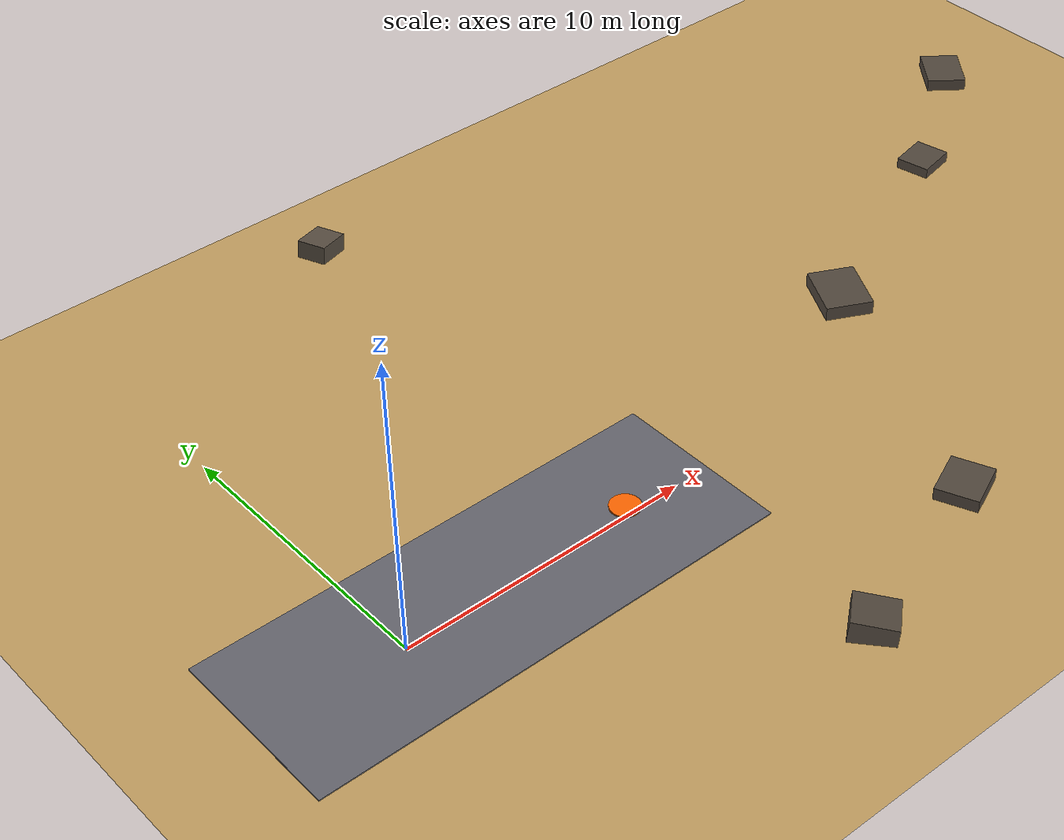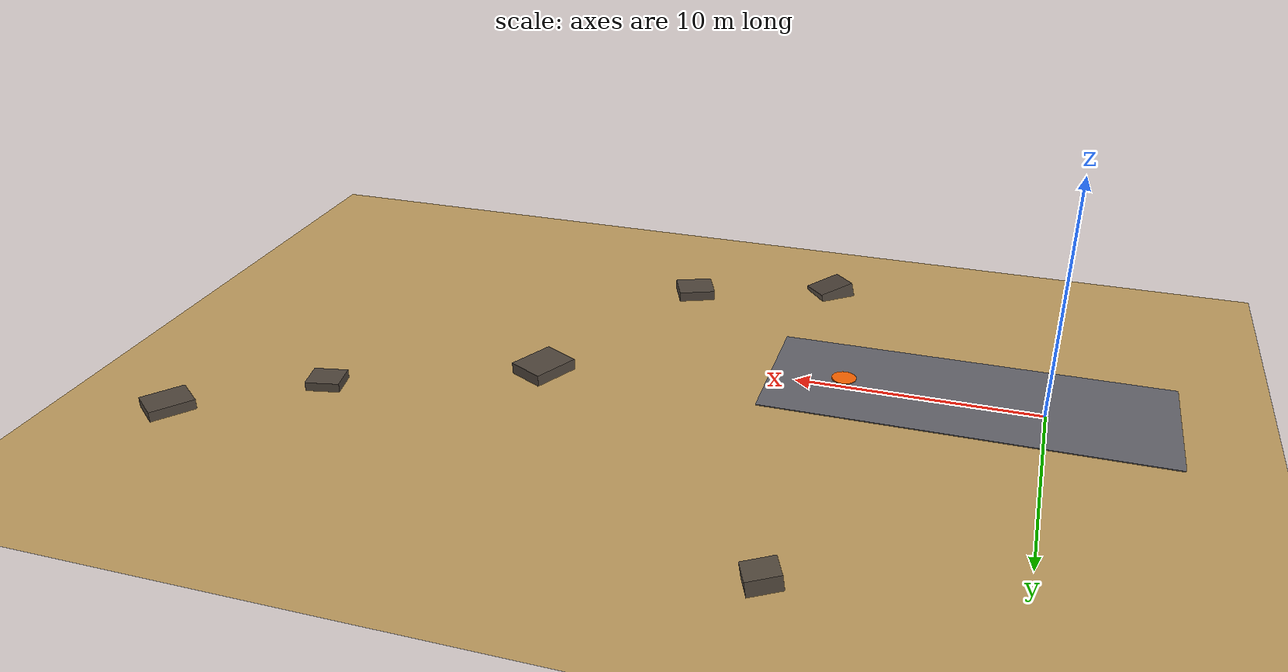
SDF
<sdf version="1.9">
 <world name="lunar_terrain">
  <model name="terrain">
   <static>true</static>
   <link name="terrain_link">
    <visual name="terrain_visual">
     <pose>0 0 0.375 0 0 0</pose>
     <geometry><plane><normal>0 0 1</normal><size>200 200</size></plane></geometry>
     <material>
      <ambient>0.55 0.45 0.30 1</ambient>
      <diffuse>0.76 0.62 0.38 1</diffuse>
      <specular>0.05 0.04 0.02 1</specular>
     </material>
     <cast_shadows>false</cast_shadows>
    </visual>
    <collision name="terrain_collision">
     <pose>0 0 0.125 0 0 0</pose>
     <geometry><box><size>300 300 0.5</size></box></geometry>
     <surface>
      <friction><ode><mu>0.9</mu><mu2>0.9</mu2></ode></friction>
      <contact><ode><kp>120000</kp><kd>800</kd><max_vel>0.05</max_vel><min_depth>0.003</min_depth></ode></contact>
     </surface>
    </collision>
   </link>
  </model>
  <model name="rock_a">
   <static>true</static>
   <pose>10 -8 0.35 0.1 0.2 0.7</pose>
   <link name="link">
    <collision name="c"><geometry><box><size>1.6 1.4 0.8</size></box></geometry></collision>
    <visual name="v">
     <geometry><box><size>1.6 1.4 0.8</size></box></geometry>
     <material>
      <ambient>0.20 0.18 0.15 1</ambient>
      <diffuse>0.32 0.28 0.24 1</diffuse>
      <specular>0.06 0.05 0.05 1</specular>
     </material>
    </visual>
   </link>
  </model>
  <model name="rock_c">
   <static>true</static>
   <pose>8 15 1.72 0.0 0.15 0.4</pose>
   <link name="link">
    <collision name="c"><geometry><box><size>1.2 1.0 0.6</size></box></geometry></collision>
    <visual name="v">
     <geometry><box><size>1.2 1.0 0.6</size></box></geometry>
     <material>
      <ambient>0.22 0.20 0.17 1</ambient>
      <diffuse>0.35 0.31 0.26 1</diffuse>
      <specular>0.05 0.05 0.04 1</specular>
     </material>
    </visual>
   </link>
  </model>
  <model name="rock_e">
   <static>true</static>
   <pose>16 -6 0.35 0.0 0.0 0.4</pose>
   <link name="link">
    <collision name="c"><geometry><box><size>1.6 1.4 0.8</size></box></geometry></collision>
    <visual name="v">
     <geometry><box><size>1.6 1.4 0.8</size></box></geometry>
     <material>
      <ambient>0.20 0.18 0.15 1</ambient>
      <diffuse>0.32 0.28 0.24 1</diffuse>
      <specular>0.06 0.05 0.05 1</specular>
     </material>
    </visual>
   </link>
  </model>
  <model name="rock_f">
   <static>true</static>
   <pose>20 2.9 0.35 0.0 0.0 1.1</pose>
   <link name="link">
    <collision name="c"><geometry><box><size>2.0 1.6 0.9</size></box></geometry></collision>
    <visual name="v">
     <geometry><box><size>2.0 1.6 0.9</size></box></geometry>
     <material>
      <ambient>0.20 0.18 0.15 1</ambient>
      <diffuse>0.32 0.28 0.24 1</diffuse>
      <specular>0.06 0.05 0.05 1</specular>
     </material>
    </visual>
   </link>
  </model>
  <model name="rock_g">
   <static>true</static>
   <pose>28 6.5 0.35 0.0 0.0 0.2</pose>
   <link name="link">
    <collision name="c"><geometry><box><size>1.4 1.2 0.7</size></box></geometry></collision>
    <visual name="v">
     <geometry><box><size>1.4 1.2 0.7</size></box></geometry>
     <material>
      <ambient>0.20 0.18 0.15 1</ambient>
      <diffuse>0.32 0.28 0.24 1</diffuse>
      <specular>0.06 0.05 0.05 1</specular>
     </material>
    </visual>
   </link>
  </model>
  <model name="rock_h">
   <static>true</static>
   <pose>33 10 0.35 0.0 0.0 0.9</pose>
   <link name="link">
    <collision name="c"><geometry><box><size>1.8 1.4 0.8</size></box></geometry></collision>
    <visual name="v">
     <geometry><box><size>1.8 1.4 0.8</size></box></geometry>
     <material>
      <ambient>0.20 0.18 0.15 1</ambient>
      <diffuse>0.32 0.28 0.24 1</diffuse>
      <specular>0.06 0.05 0.05 1</specular>
     </material>
    </visual>
   </link>
  </model>
  <model name="rover_trail_path">
   <static>true</static>
   <pose>0 0 0.377 0 0 0</pose>
   <link name="link">
    <visual name="t_l_0">
     <pose>-2.0 0.42 0 0 0 0</pose>
     <geometry><box><size>0.25 0.12 0.001</size></box></geometry>
     <material><ambient>0.04 0.04 0.04 1</ambient><diffuse>0.04 0.04 0.04 1</diffuse></material>
    </visual>
    <visual name="t_r_0">
     <pose>-2.0 -0.42 0 0 0 0</pose>
     <geometry><box><size>0.25 0.12 0.001</size></box></geometry>
     <material><ambient>0.04 0.04 0.04 1</ambient><diffuse>0.04 0.04 0.04 1</diffuse></material>
    </visual>
    <visual name="t_l_1">
     <pose>-1.0 0.42 0 0 0 0</pose>
     <geometry><box><size>0.25 0.12 0.001</size></box></geometry>
     <material><ambient>0.04 0.04 0.04 1</ambient><diffuse>0.04 0.04 0.04 1</diffuse></material>
    </visual>
    <visual name="t_r_1">
     <pose>-1.0 -0.42 0 0 0 0</pose>
     <geometry><box><size>0.25 0.12 0.001</size></box></geometry>
     <material><ambient>0.04 0.04 0.04 1</ambient><diffuse>0.04 0.04 0.04 1</diffuse></material>
    </visual>
    <visual name="t_l_2">
     <pose>-0.04 0.42 0 0 0 0.10</pose>
     <geometry><box><size>0.25 0.12 0.001</size></box></geometry>
     <material><ambient>0.04 0.04 0.04 1</ambient><diffuse>0.04 0.04 0.04 1</diffuse></material>
    </visual>
    <visual name="t_r_2">
     <pose>0.04 -0.42 0 0 0 0.10</pose>
     <geometry><box><size>0.25 0.12 0.001</size></box></geometry>
     <material><ambient>0.04 0.04 0.04 1</ambient><diffuse>0.04 0.04 0.04 1</diffuse></material>
    </visual>
    <visual name="t_l_3">
     <pose>0.92 0.51 0 0 0 0.20</pose>
     <geometry><box><size>0.25 0.12 0.001</size></box></geometry>
     <material><ambient>0.04 0.04 0.04 1</ambient><diffuse>0.04 0.04 0.04 1</diffuse></material>
    </visual>
    <visual name="t_r_3">
     <pose>1.08 -0.31 0 0 0 0.20</pose>
     <geometry><box><size>0.25 0.12 0.001</size></box></geometry>
     <material><ambient>0.04 0.04 0.04 1</ambient><diffuse>0.04 0.04 0.04 1</diffuse></material>
    </visual>
    <visual name="t_l_4">
     <pose>1.92 0.71 0 0 0 0.20</pose>
     <geometry><box><size>0.25 0.12 0.001</size></box></geometry>
     <material><ambient>0.04 0.04 0.04 1</ambient><diffuse>0.04 0.04 0.04 1</diffuse></material>
    </visual>
    <visual name="t_r_4">
     <pose>2.08 -0.11 0 0 0 0.20</pose>
     <geometry><box><size>0.25 0.12 0.001</size></box></geometry>
     <material><ambient>0.04 0.04 0.04 1</ambient><diffuse>0.04 0.04 0.04 1</diffuse></material>
    </visual>
    <visual name="t_l_5">
     <pose>2.92 0.91 0 0 0 0.20</pose>
     <geometry><box><size>0.25 0.12 0.001</size></box></geometry>
     <material><ambient>0.04 0.04 0.04 1</ambient><diffuse>0.04 0.04 0.04 1</diffuse></material>
    </visual>
    <visual name="t_r_5">
     <pose>3.08 0.09 0 0 0 0.20</pose>
     <geometry><box><size>0.25 0.12 0.001</size></box></geometry>
     <material><ambient>0.04 0.04 0.04 1</ambient><diffuse>0.04 0.04 0.04 1</diffuse></material>
    </visual>
    <visual name="t_l_6">
     <pose>3.96 1.12 0 0 0 0.10</pose>
     <geometry><box><size>0.25 0.12 0.001</size></box></geometry>
     <material><ambient>0.04 0.04 0.04 1</ambient><diffuse>0.04 0.04 0.04 1</diffuse></material>
    </visual>
    <visual name="t_r_6">
     <pose>4.04 0.28 0 0 0 0.10</pose>
     <geometry><box><size>0.25 0.12 0.001</size></box></geometry>
     <material><ambient>0.04 0.04 0.04 1</ambient><diffuse>0.04 0.04 0.04 1</diffuse></material>
    </visual>
    <visual name="t_l_7">
     <pose>5.04 1.22 0 0 0 -0.10</pose>
     <geometry><box><size>0.25 0.12 0.001</size></box></geometry>
     <material><ambient>0.04 0.04 0.04 1</ambient><diffuse>0.04 0.04 0.04 1</diffuse></material>
    </visual>
    <visual name="t_r_7">
     <pose>4.96 0.38 0 0 0 -0.10</pose>
     <geometry><box><size>0.25 0.12 0.001</size></box></geometry>
     <material><ambient>0.04 0.04 0.04 1</ambient><diffuse>0.04 0.04 0.04 1</diffuse></material>
    </visual>
    <visual name="t_l_8">
     <pose>6.12 1.10 0 0 0 -0.29</pose>
     <geometry><box><size>0.25 0.12 0.001</size></box></geometry>
     <material><ambient>0.04 0.04 0.04 1</ambient><diffuse>0.04 0.04 0.04 1</diffuse></material>
    </visual>
    <visual name="t_r_8">
     <pose>5.88 0.30 0 0 0 -0.29</pose>
     <geometry><box><size>0.25 0.12 0.001</size></box></geometry>
     <material><ambient>0.04 0.04 0.04 1</ambient><diffuse>0.04 0.04 0.04 1</diffuse></material>
    </visual>
    <visual name="t_l_9">
     <pose>7.16 0.79 0 0 0 -0.38</pose>
     <geometry><box><size>0.25 0.12 0.001</size></box></geometry>
     <material><ambient>0.04 0.04 0.04 1</ambient><diffuse>0.04 0.04 0.04 1</diffuse></material>
    </visual>
    <visual name="t_r_9">
     <pose>6.84 0.01 0 0 0 -0.38</pose>
     <geometry><box><size>0.25 0.12 0.001</size></box></geometry>
     <material><ambient>0.04 0.04 0.04 1</ambient><diffuse>0.04 0.04 0.04 1</diffuse></material>
    </visual>
    <visual name="t_l_10">
     <pose>8.16 0.39 0 0 0 -0.38</pose>
     <geometry><box><size>0.25 0.12 0.001</size></box></geometry>
     <material><ambient>0.04 0.04 0.04 1</ambient><diffuse>0.04 0.04 0.04 1</diffuse></material>
    </visual>
    <visual name="t_r_10">
     <pose>7.84 -0.39 0 0 0 -0.38</pose>
     <geometry><box><size>0.25 0.12 0.001</size></box></geometry>
     <material><ambient>0.04 0.04 0.04 1</ambient><diffuse>0.04 0.04 0.04 1</diffuse></material>
    </visual>
   </link>
  </model>
  <model name="rover_pad">
   <static>true</static>
   <pose>3 0 0.36 0 0 0</pose>
   <link name="pad_link">
    <collision name="col">
     <geometry><box><size>16 6 0.04</size></box></geometry>
     <surface>
      <friction><ode><mu>0.85</mu><mu2>0.85</mu2></ode></friction>
      <contact><ode><kp>120000</kp><kd>800</kd><max_vel>0.05</max_vel></ode></contact>
     </surface>
    </collision>
    <visual name="vis">
     <geometry><box><size>16 6 0.04</size></box></geometry>
     <material><ambient>0.35 0.35 0.38 1</ambient><diffuse>0.4 0.4 0.43 1</diffuse></material>
    </visual>
   </link>
  </model>
  <model name="goal_marker">
   <static>true</static>
   <pose>8 0 0.44 0 0 0</pose>
   <link name="marker_link">
    <visual name="v">
     <geometry><cylinder><radius>0.5</radius><length>0.04</length></cylinder></geometry>
     <material>
      <ambient>1.0 0.4 0.0 1</ambient>
      <diffuse>1.0 0.4 0.0 1</diffuse>
      <specular>1.0 0.6 0.2 1</specular>
      <emissive>0.6 0.2 0.0 1</emissive>
     </material>
    </visual>
   </link>
  </model>
 </world>
</sdf>
